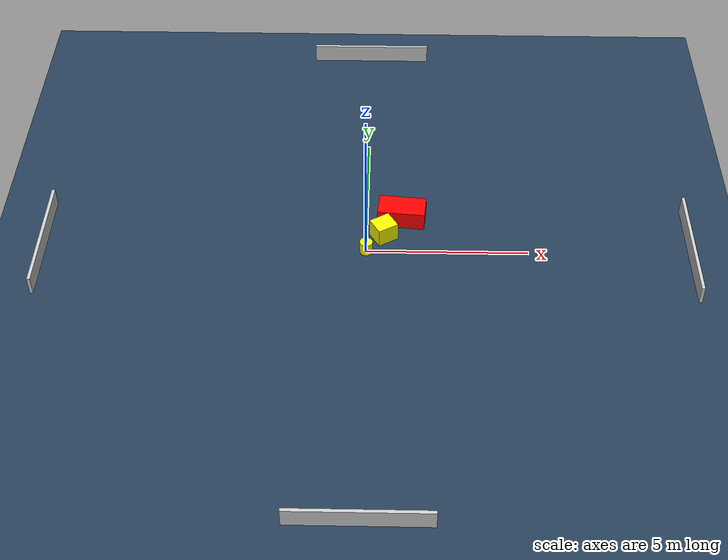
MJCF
<?xml version="1.0" ?>
<mujoco model="generated_environment">
  <option timestep="0.01" integrator="RK4" cone="elliptic"/>
  <default>
    <geom density="1"/>
  </default>
  <asset>
    <texture builtin="gradient" height="3072" name="skybox" rgb1="0.3 0.5 0.7" rgb2="0 0 0" type="skybox" width="512"/>
    <texture builtin="checker" height="300" name="groundplane" rgb1="0.2 0.3 0.4" rgb2="0.1 0.2 0.3" type="2d" width="300"/>
    <material name="groundplane" reflectance="0.2" texrepeat="5 5" texture="groundplane"/>
  </asset>
  <worldbody>
    <light dir="0 0 -1" directional="true" pos="0 0 1.5"/>
    <geom condim="3" friction="0.5 0.005 0.001" material="groundplane" name="floor" pos="0 0 0" size="0 0 0.05" type="plane"/>
    <body name="walls">
      <geom name="wall_1" condim="4" pos="-10.0 0.0 0.3" rgba="0.800000011920929 0.800000011920929 0.800000011920929 1.0" size="0.05 2.0 0.3" type="box"/>
      <geom name="wall_2" condim="4" pos="10.0 0.0 0.3" rgba="0.800000011920929 0.800000011920929 0.800000011920929 1.0" size="0.05 2.0 0.3" type="box"/>
      <geom name="wall_3" condim="4" pos="0.0 -10.0 0.3" rgba="0.800000011920929 0.800000011920929 0.800000011920929 1.0" size="2.0 0.05 0.3" type="box"/>
      <geom name="wall_4" condim="4" pos="0.0 10.0 0.3" rgba="0.800000011920929 0.800000011920929 0.800000011920929 1.0" size="2.0 0.05 0.3" type="box"/>
    </body>
    <body name="robot">
      <joint name="joint_x" type="slide" pos="0 0 0" axis="1 0 0"/>
      <joint name="joint_y" type="slide" pos="0 0 0" axis="0 1 0"/>
      <geom name="robot" type="cylinder" pos="0.0 0.0 0.2" size="0.2 0.2 0.0" mass="5.0" friction="1.0 0.005 0.0001" condim="4" rgba="1.0 1.0 0.0 1.0"/>
    </body>
    <body name="obstacle_1_movable">
      <geom name="obstacle_1_movable" condim="4" pos="0.5377075368260203 0.6699722678208019 0.3" euler="0 0 211.05748094576407" friction="0.0 0.005 0.001" rgba="1.0 1.0 0.0 1.0" size="0.34008519116029445 0.30325771593768364 0.3" type="box" mass="0.1"/>
      <joint type="free"/>
    </body>
    <body name="obstacle_2_static">
      <geom name="obstacle_2_static" condim="4" pos="1.101129153108861 1.4736446214081333 0.3" euler="0 0 354.53498109770413" friction="0.0 0.005 0.001" rgba="1.0 0.0 0.0 1.0" size="0.7411374439264373 0.39898865993285115 0.3" type="box"/>
    </body>
  </worldbody>
  <actuator>
    <motor name="actuator_x" joint="joint_x" gear="1" ctrlrange="-1 1"/>
    <motor name="actuator_y" joint="joint_y" gear="1" ctrlrange="-1 1"/>
  </actuator>
</mujoco>
